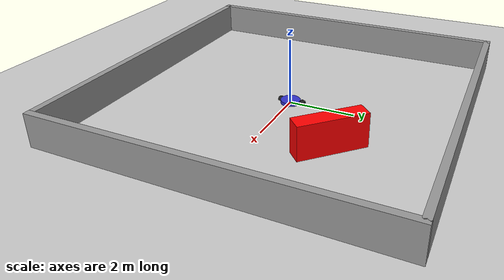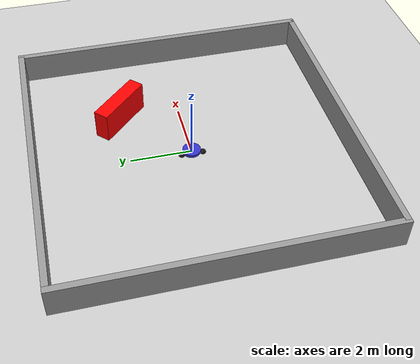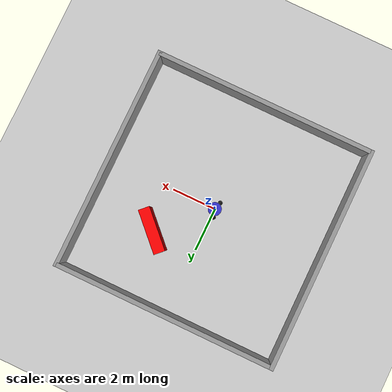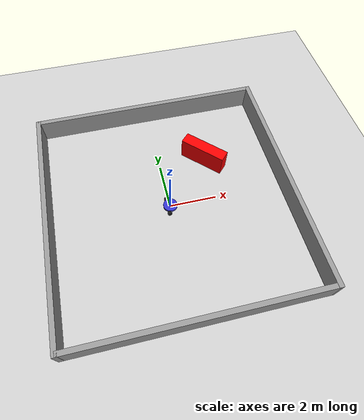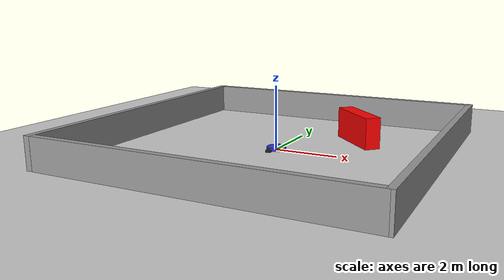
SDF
<?xml version="1.0" ?>
<sdf version="1.8">
  <world name="otonom_dunya">
    <plugin filename="gz-sim-physics-system" name="gz::sim::systems::Physics"/>
    <plugin filename="gz-sim-sensors-system" name="gz::sim::systems::Sensors"><render_engine>ogre</render_engine></plugin>
    <plugin filename="gz-sim-scene-broadcaster-system" name="gz::sim::systems::SceneBroadcaster"/>
    <scene><ambient>1.0 1.0 1.0 1.0</ambient><background>0.5 0.7 0.9 1.0</background><shadows>true</shadows></scene>
    <light type="directional" name="sun"><cast_shadows>true</cast_shadows><pose>0 0 10 0 0 0</pose><diffuse>1.0 1.0 1.0 1</diffuse><specular>0.5 0.5 0.5 1</specular><direction>-0.5 0.1 -0.9</direction></light>

    <model name="zemin"><static>true</static><link name="link"><collision name="collision"><geometry><plane><normal>0 0 1</normal><size>100 100</size></plane></geometry></collision><visual name="visual"><geometry><plane><normal>0 0 1</normal><size>100 100</size></plane></geometry><material><ambient>0.8 0.8 0.8 1</ambient><diffuse>0.8 0.8 0.8 1</diffuse></material></visual></link></model>
    <model name="kuzey_duvar"><pose>5 0 0.5 0 0 0</pose><static>true</static><link name="link"><collision name="c"><geometry><box><size>0.2 10.2 1</size></box></geometry></collision><visual name="v"><geometry><box><size>0.2 10.2 1</size></box></geometry><material><ambient>0.6 0.6 0.6 1</ambient><diffuse>0.6 0.6 0.6 1</diffuse></material></visual></link></model>
    <model name="guney_duvar"><pose>-5 0 0.5 0 0 0</pose><static>true</static><link name="link"><collision name="c"><geometry><box><size>0.2 10.2 1</size></box></geometry></collision><visual name="v"><geometry><box><size>0.2 10.2 1</size></box></geometry><material><ambient>0.6 0.6 0.6 1</ambient><diffuse>0.6 0.6 0.6 1</diffuse></material></visual></link></model>
    <model name="dogu_duvar"><pose>0 5 0.5 0 0 1.5707</pose><static>true</static><link name="link"><collision name="c"><geometry><box><size>0.2 10 1</size></box></geometry></collision><visual name="v"><geometry><box><size>0.2 10 1</size></box></geometry><material><ambient>0.6 0.6 0.6 1</ambient><diffuse>0.6 0.6 0.6 1</diffuse></material></visual></link></model>
    <model name="bati_duvar"><pose>0 -5 0.5 0 0 1.5707</pose><static>true</static><link name="link"><collision name="c"><geometry><box><size>0.2 10 1</size></box></geometry></collision><visual name="v"><geometry><box><size>0.2 10 1</size></box></geometry><material><ambient>0.6 0.6 0.6 1</ambient><diffuse>0.6 0.6 0.6 1</diffuse></material></visual></link></model>
    <model name="kirmizi_engel"><pose>2 2 0.5 0 0 0.785</pose><static>true</static><link name="link"><collision name="c"><geometry><box><size>0.5 2 1</size></box></geometry></collision><visual name="v"><geometry><box><size>0.5 2 1</size></box></geometry><material><ambient>1 0 0 1</ambient><diffuse>1 0 0 1</diffuse></material></visual></link></model>

    <model name="robot_supurge">
      <pose>0 0 0.05 0 0 0</pose>
      <link name="base_link">
        <inertial><mass>5.0</mass><inertia><ixx>0.0395</ixx><iyy>0.0395</iyy><izz>0.0625</izz></inertia></inertial>
        <collision name="collision"><geometry><cylinder><radius>0.3</radius><length>0.1</length></cylinder></geometry></collision>
        <visual name="visual"><geometry><cylinder><radius>0.3</radius><length>0.1</length></cylinder></geometry><material><ambient>0.2 0.2 0.8 1</ambient><diffuse>0.2 0.2 0.8 1</diffuse></material></visual>
        <sensor name="lidar" type="gpu_lidar">
          <pose>0 0 0.06 0 0 0</pose><topic>/scan</topic><update_rate>10</update_rate>
          <gz_frame_id>base_link</gz_frame_id>
          <ray><scan><horizontal><samples>360</samples><resolution>1</resolution><min_angle>-3.14159</min_angle><max_angle>3.14159</max_angle></horizontal></scan><range><min>0.15</min><max>10.0</max><resolution>0.01</resolution></range></ray>
          <always_on>1</always_on><visualize>true</visualize>
        </sensor>
      </link>
      <link name="left_wheel">
        <pose>-0.1 0.35 -0.05 -1.5707 0 0</pose>
        <inertial><mass>1.0</mass><inertia><ixx>0.0025</ixx><iyy>0.0025</iyy><izz>0.005</izz></inertia></inertial>
        <collision name="c"><geometry><sphere><radius>0.1</radius></sphere></geometry></collision>
        <visual name="v"><geometry><sphere><radius>0.1</radius></sphere></geometry><material><ambient>0.1 0.1 0.1 1</ambient><diffuse>0.1 0.1 0.1 1</diffuse></material></visual>
      </link>
      <link name="right_wheel">
        <pose>-0.1 -0.35 -0.05 -1.5707 0 0</pose>
        <inertial><mass>1.0</mass><inertia><ixx>0.0025</ixx><iyy>0.0025</iyy><izz>0.005</izz></inertia></inertial>
        <collision name="c"><geometry><sphere><radius>0.1</radius></sphere></geometry></collision>
        <visual name="v"><geometry><sphere><radius>0.1</radius></sphere></geometry><material><ambient>0.1 0.1 0.1 1</ambient><diffuse>0.1 0.1 0.1 1</diffuse></material></visual>
      </link>
      <link name="caster">
        <pose>0.2 0 -0.05 0 0 0</pose>
        <inertial><mass>0.5</mass><inertia><ixx>0.002</ixx><iyy>0.002</iyy><izz>0.002</izz></inertia></inertial>
        <collision name="c"><geometry><sphere><radius>0.1</radius></sphere></geometry><surface><friction><ode><mu>0.0001</mu><mu2>0.0001</mu2></ode></friction></surface></collision>
        <visual name="v"><geometry><sphere><radius>0.1</radius></sphere></geometry></visual>
      </link>
      <joint name="left_joint" type="revolute"><parent>base_link</parent><child>left_wheel</child><axis><xyz>0 0 1</xyz></axis></joint>
      <joint name="right_joint" type="revolute"><parent>base_link</parent><child>right_wheel</child><axis><xyz>0 0 1</xyz></axis></joint>
      <joint name="caster_joint" type="fixed"><parent>base_link</parent><child>caster</child></joint>
      <plugin filename="gz-sim-diff-drive-system" name="gz::sim::systems::DiffDrive">
        <left_joint>left_joint</left_joint><right_joint>right_joint</right_joint><wheel_separation>0.7</wheel_separation><wheel_radius>0.1</wheel_radius>
        <topic>/cmd_vel</topic><odom_topic>/odom</odom_topic><tf_topic>/tf</tf_topic><frame_id>odom</frame_id>
        <child_frame_id>base_footprint</child_frame_id>
        <publish_odom>true</publish_odom><publish_odom_tf>true</publish_odom_tf><publish_wheel_tf>true</publish_wheel_tf>
      </plugin>
    </model>
  </world>
</sdf>
